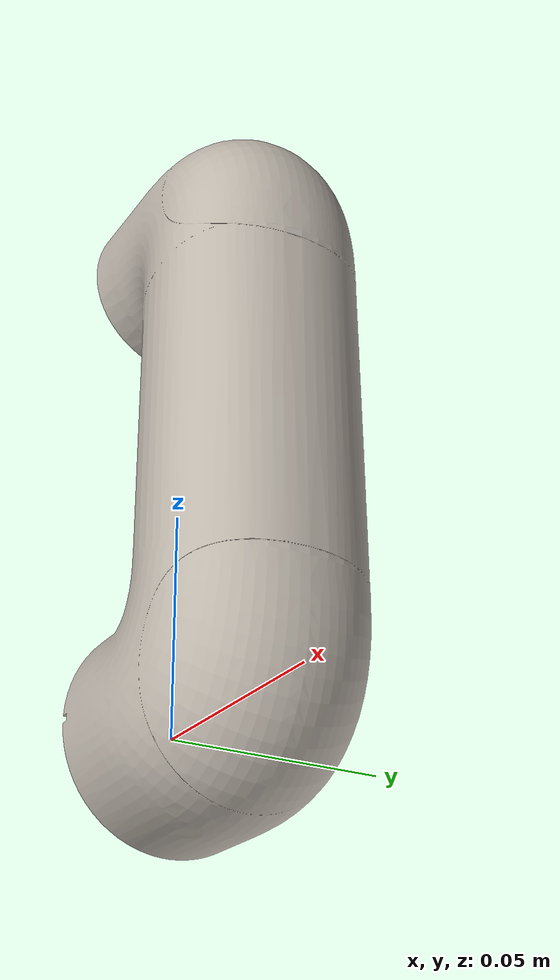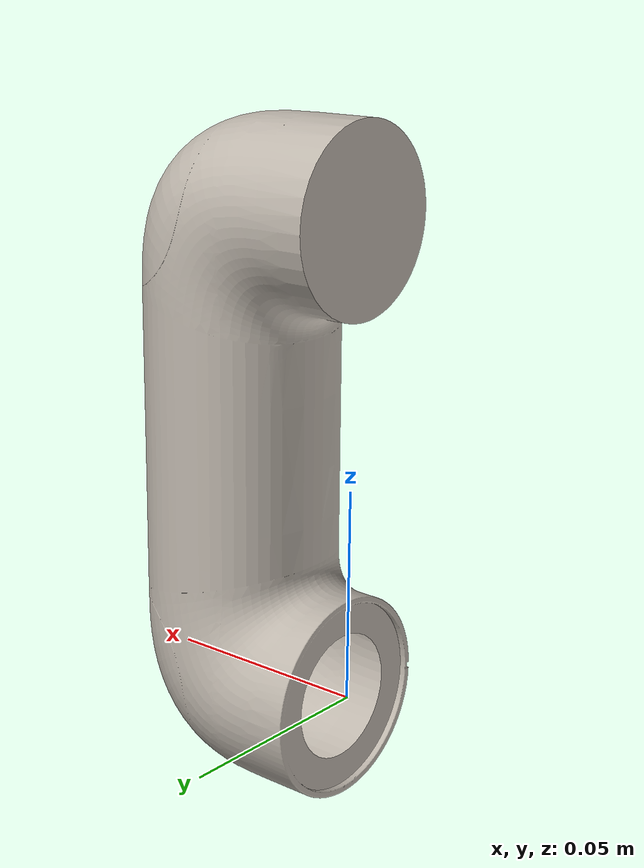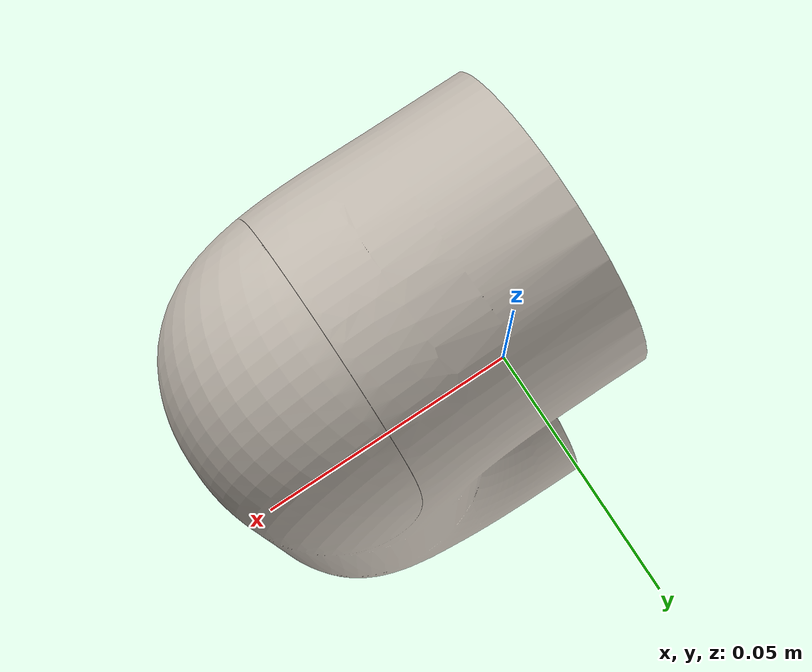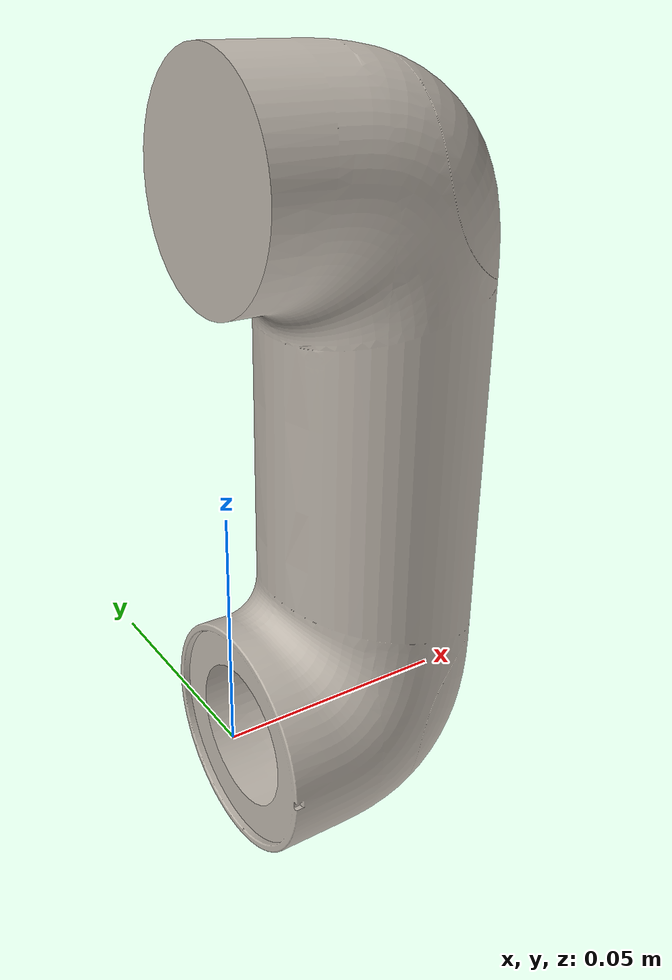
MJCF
<mujoco model="link3">
  <default>
    <default class="visual">
      <geom group="2" type="mesh" contype="0" conaffinity="0"/>
    </default>
    <default class="collision">
      <geom group="3" type="mesh"/>
    </default>
  </default>
  <asset>
    <texture type="2d" name="link3" file="link3.png"/>
    <material name="material0.002" texture="link3" specular="0.0" shininess="0.25"/>
    <mesh file="link3.obj"/>
  </asset>
  <worldbody>
    <body name="link3">
      <geom material="material0.002" mesh="link3" class="visual"/>
      <geom mesh="link3" class="collision"/>
    </body>
  </worldbody>
</mujoco>
